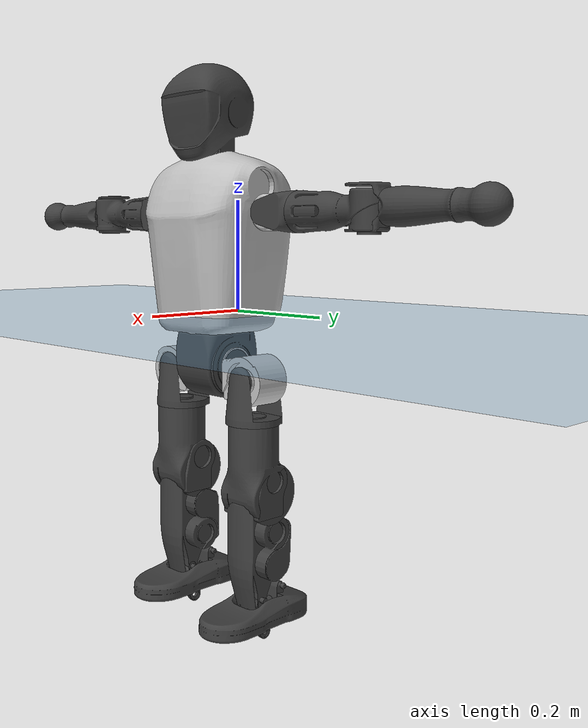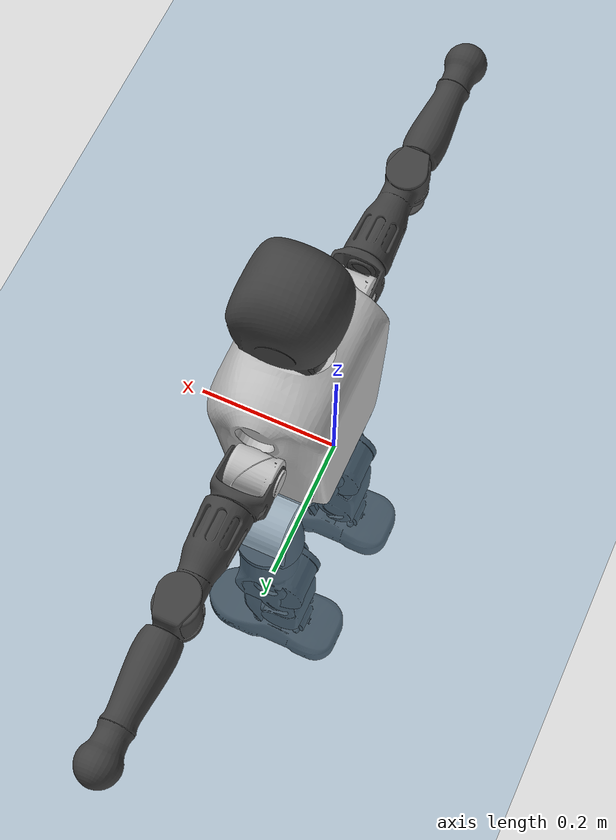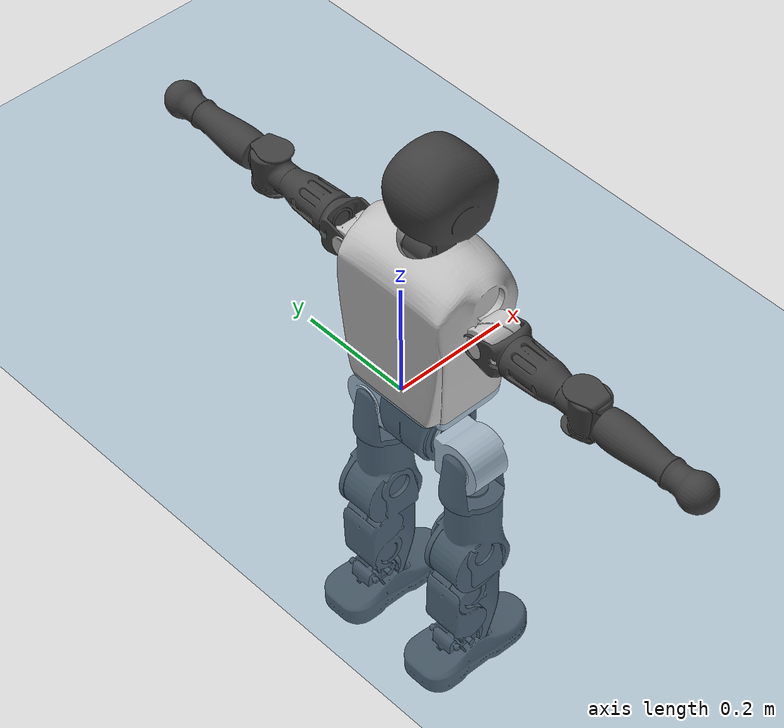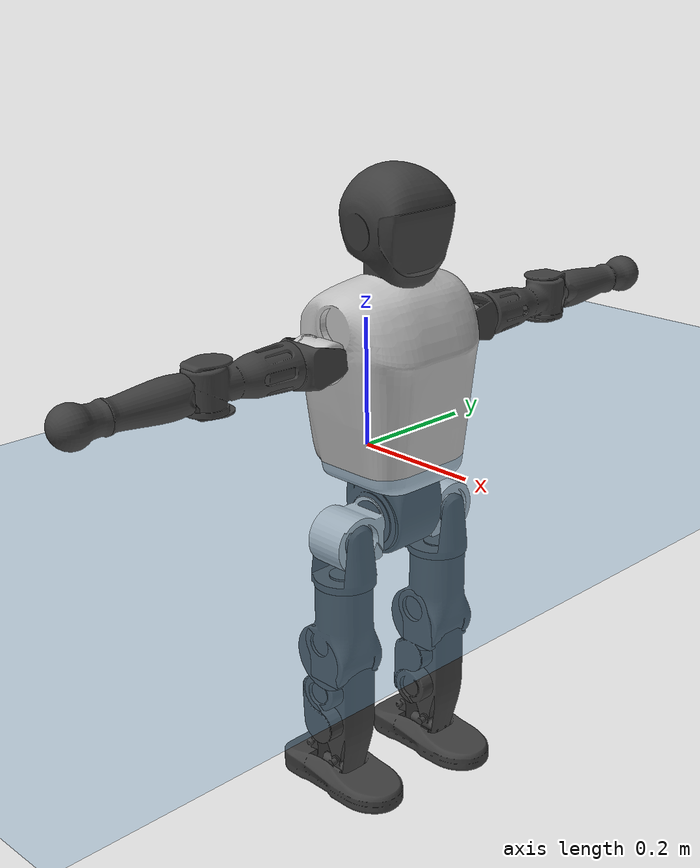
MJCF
<mujoco model="T1">
  <compiler angle="radian" assetdir="assets" balanceinertia="true" inertiafromgeom="false"/>

  <option timestep="0.005" density="1.2" viscosity="2e-05"/>

  <size nkey="1"/>

  <visual>
    <quality shadowsize="8192"/>
    <map shadowclip="0.5"/>
  </visual>

  <default>
    <default class="/">
      <joint armature="0.01" damping="0.01" frictionloss="0.1"/>
      <geom contype="0" conaffinity="0" group="1" solref="-1000 -80"/>
      <site size="0.01 0.005 0.005" group="5"/>
      <general forcelimited="true" biastype="affine" gainprm="25" biasprm="0 -25 -0.6"/>
      <default class="t1">
        <geom rgba="0.25 0.25 0.25 1"/>
        <default class="visual">
          <geom type="mesh" group="2"/>
        </default>
        <default class="collision">
          <geom group="3"/>
        </default>
        <default class="foot">
          <geom size="0.1115 0.05 0.015" type="box" condim="6" group="4" priority="1" solimp="0.015 1 0.015"/>
        </default>
        <default class="reward_collision_sphere">
          <geom group="5" rgba="1 0 0 1"/>
        </default>
      </default>
    </default>
  </default>

  <asset>
    <texture type="skybox" colorspace="auto" name="//unnamed_texture_0" builtin="gradient" rgb1="0.95 0.95 0.95" rgb2="0.95 0.95 0.95" width="100" height="600"/>
    <texture type="2d" colorspace="auto" name="texplane" builtin="checker" rgb1="0.345 0.575 0.748" rgb2="0.345 0.575 0.748" markrgb="1 1 1" width="512" height="512"/>
    <material name="MatPlane" class="/" texture="texplane" texuniform="true" texrepeat="2 2" specular="0.9"/>
    <mesh name="Trunk" class="/" file="Trunk.stl"/>
    <mesh name="H1" class="/" file="H1.stl"/>
    <mesh name="H2" class="/" file="H2.stl"/>
    <mesh name="AL1" class="/" file="AL1.stl"/>
    <mesh name="AL2" class="/" file="AL2.stl"/>
    <mesh name="AL3" class="/" file="AL3.stl"/>
    <mesh name="left_hand_link" class="/" file="left_hand_link.stl"/>
    <mesh name="AR1" class="/" file="AR1.stl"/>
    <mesh name="AR2" class="/" file="AR2.stl"/>
    <mesh name="AR3" class="/" file="AR3.stl"/>
    <mesh name="right_hand_link" class="/" file="right_hand_link.stl"/>
    <mesh name="Waist" class="/" file="Waist.stl"/>
    <mesh name="Hip_Pitch_Left" class="/" file="Hip_Pitch_Left.stl"/>
    <mesh name="Hip_Roll_Left" class="/" file="Hip_Roll_Left.stl"/>
    <mesh name="Hip_Yaw_Left" class="/" file="Hip_Yaw_Left.stl"/>
    <mesh name="Shank_Left" class="/" file="Shank_Left.stl"/>
    <mesh name="Ankle_Cross_Left" class="/" file="Ankle_Cross_Left.stl"/>
    <mesh name="left_foot_link" class="/" file="left_foot_link.stl"/>
    <mesh name="Hip_Pitch_Right" class="/" file="Hip_Pitch_Right.stl"/>
    <mesh name="Hip_Roll_Right" class="/" file="Hip_Roll_Right.stl"/>
    <mesh name="Hip_Yaw_Right" class="/" file="Hip_Yaw_Right.stl"/>
    <mesh name="Shank_Right" class="/" file="Shank_Right.stl"/>
    <mesh name="Ankle_Cross_Right" class="/" file="Ankle_Cross_Right.stl"/>
    <mesh name="right_foot_link" class="/" file="right_foot_link.stl"/>
  </asset>

  <worldbody>
    <geom name="floor" class="/" size="100 100 0.125" type="plane" group="0" material="MatPlane"/>
    <light name="toplight_shadow" class="/" pos="0 0 5" dir="0.0990148 0.0990148 -0.990148" type="directional" ambient="0.04 0.04 0.04" diffuse="0.55 0.55 0.55" specular="0.12 0.12 0.12"/>
    <light name="toplight_fill" class="/" pos="0 0 5" dir="0.0990148 0.0990148 -0.990148" type="directional" castshadow="false" ambient="0.04 0.04 0.04" diffuse="0.3 0.3 0.3" specular="0.08 0.08 0.08"/>
    <body name="trunk" childclass="t1" pos="0.000919392 -3.55199e-05 0.00263453" quat="1 5.61616e-05 0.000470781 -5.21089e-05">
      <inertial pos="0.0459303 0.00084428 0.0832676" quat="0.999772 -0.000934103 -0.021286 0.00162414" mass="7.19379" diaginertia="0.0405724 0.049307 0.017788"/>
      <joint name="//unnamed_joint_0" type="free" armature="0" damping="0" frictionloss="0"/>
      <geom name="//unnamed_geom_1" class="visual" rgba="0.76 0.76 0.76 1" mesh="Trunk"/>
      <geom name="//unnamed_geom_2" class="collision" size="0.0641919 0.0855892 0.128384" pos="0.0512382 0 0.095778" type="box"/>
      <geom name="//unnamed_geom_3" class="reward_collision_sphere" size="0.0984276" pos="0.0512382 0 0.079815"/>
      <geom name="//unnamed_geom_4" class="reward_collision_sphere" size="0.0128384" pos="0.0512382 0.0778223 0"/>
      <geom name="//unnamed_geom_5" class="reward_collision_sphere" size="0.0128384" pos="0.0512382 -0.0778223 0"/>
      <geom name="//unnamed_geom_6" class="reward_collision_sphere" size="0.0128384" pos="0.0512382 0.0979645 0.143667"/>
      <geom name="//unnamed_geom_7" class="reward_collision_sphere" size="0.0128384" pos="0.0512382 -0.0979645 0.143667"/>
      <site name="imu" pos="0.00611049 -0.0109924 0.0103096" size="0.00855892"/>
      <camera name="track" pos="0 -1.83111 0" quat="0.707107 0.707107 0 0" mode="trackcom"/>
      <camera name="ego_camera" pos="0.104184 0 0.335223" quat="-0.5 -0.5 0.5 0.5"/>
      <body name="H1" pos="0.0501397 -0.00313255 0.193411" quat="0.999999 0.00119981 0.000389621 -0.000292427">
        <inertial pos="-0.00264892 -0.00144434 0.0458839" quat="0.760642 -0.0148423 0.00231938 0.648997" mass="0.275206" diaginertia="0.000112133 0.00014341 4.96936e-05"/>
        <joint name="AAHead_yaw" pos="0 0 0" axis="0.000352387 -0.000100817 1" stiffness="0.00771534" range="-1.53277 1.62299" armature="0.00879833" damping="0.0121353" frictionloss="0.0820819"/>
        <geom name="//unnamed_geom_8" class="visual" mesh="H1"/>
        <body name="H2" pos="-0.000866703 -0.00198665 0.0497637" quat="1 -0.000137337 -6.71865e-05 4.10024e-05">
          <inertial pos="0.00737983 0.00274054 0.0813923" quat="0.988305 0.101817 -0.0803274 -0.0802171" mass="0.398291" diaginertia="0.000936188 0.00120693 0.000557591"/>
          <joint name="Head_pitch" pos="0 0 0" axis="0.0016251 -0.999994 0.00296365" stiffness="0.00663908" range="-1.22593 0.404137" armature="0.00754856" damping="0" frictionloss="0.0841789"/>
          <geom name="//unnamed_geom_9" class="visual" mesh="H2"/>
          <geom name="//unnamed_geom_10" class="collision" size="0.0684714" pos="0.0085397 0 0.0877965"/>
          <geom name="//unnamed_geom_11" class="reward_collision_sphere" size="0.0770303" pos="0.0170794 0 0.079815"/>
        </body>
      </body>
      <body name="AL1" pos="0.048456 0.0975083 0.173033" quat="1 -0.000185002 0.000373564 -0.000822094">
        <inertial pos="0.00161327 0.0434617 0.00180305" quat="0.496457 0.501134 -0.511452 0.490726" mass="0.331609" diaginertia="0.000624776 0.000831594 9.75108e-05"/>
        <joint name="Left_Shoulder_Pitch" pos="0 0 0" axis="-0.00313931 0.999993 0.00204771" range="-3.35077 1.1616" armature="0.008553" damping="0.00147561" frictionloss="0.084603"/>
        <geom name="//unnamed_geom_12" class="visual" rgba="0.76 0.76 0.76 1" mesh="AL1"/>
        <body name="AL2" pos="0.00250087 0.0457178 0.00054706" quat="1 -0.000224829 0.000591485 -0.000237133">
          <inertial pos="0.0058903 0.0350158 -0.00280918" quat="0.490314 0.510451 -0.486736 0.511977" mass="0.103747" diaginertia="0.000188711 0.000234774 5.86203e-05"/>
          <joint name="Left_Shoulder_Roll" pos="0 0 0" axis="-0.999976 -0.00303492 -0.00622998" range="-1.63068 1.73796" armature="0.00963598" damping="0.00110486" frictionloss="0.0784007"/>
          <geom name="//unnamed_geom_13" class="visual" mesh="AL2"/>
          <body name="AL3" pos="0.00452616 0.0579375 -0.000317004" quat="1 4.34741e-05 -0.000345169 -0.000112671">
            <inertial pos="-0.00146561 0.0769837 -0.000202113" quat="0.699793 0.714295 0.00846902 0.000859231" mass="0.655785" diaginertia="0.00605859 0.00833347 0.000199444"/>
            <joint name="Left_Elbow_Pitch" pos="0 0 0" axis="0.00160077 -0.999998 -0.00133168" stiffness="0.00953524" range="-2.32028 2.26682" armature="0.00828676" damping="0.00861133" frictionloss="0.0852936"/>
            <geom name="//unnamed_geom_14" class="visual" mesh="AL3"/>
            <geom name="//unnamed_geom_15" class="collision" size="0.0256768 0.0641919" pos="0 0.0457778 0" quat="0.707105 0.707108 0 0" type="cylinder"/>
            <geom name="//unnamed_geom_16" class="reward_collision_sphere" size="0.0308121"/>
            <body name="left_hand_link" pos="0.00105559 0.136259 0.00384951" quat="1 -0.000404382 0.000397959 -0.000735532">
              <inertial pos="0.00047495 0.0982994 -0.00150959" quat="0.703068 0.711076 0.0044661 0.006763" mass="0.203895" diaginertia="0.00378194 0.00513927 6.67181e-05"/>
              <joint name="Left_Elbow_Yaw" pos="0 0 0" axis="0.0112726 -0.00777069 0.999906" range="-2.44988 0.0479929" armature="0.0086525" damping="0" frictionloss="0.0908287"/>
              <geom name="//unnamed_geom_17" class="visual" mesh="left_hand_link"/>
              <geom name="//unnamed_geom_18" class="collision" size="0.0256768 0.0748905" pos="0 0.119022 0" quat="0.707105 0.707108 0 0" type="cylinder"/>
              <geom name="//unnamed_geom_19" class="reward_collision_sphere" size="0.0427946"/>
              <geom name="//unnamed_geom_20" class="reward_collision_sphere" size="0.0299562" pos="0 0.100711 0"/>
              <geom name="//unnamed_geom_21" class="reward_collision_sphere" size="0.0299562" pos="0 0.196845 0"/>
            </body>
          </body>
        </body>
      </body>
      <body name="AR1" pos="0.0467227 -0.0937825 0.17423" quat="1 5.54657e-05 0.000400467 3.60151e-05">
        <inertial pos="-0.00202413 -0.041663 -0.000891183" quat="0.502574 0.496378 -0.508097 0.492814" mass="0.346823" diaginertia="0.000622448 0.000837493 9.67271e-05"/>
        <joint name="Right_Shoulder_Pitch" pos="0 0 0" axis="0.0010308 -0.999907 -0.0135769" stiffness="0.00891916" range="-1.19316 3.32077" armature="0.00884255" damping="0.0191938" frictionloss="0.0839667"/>
        <geom name="//unnamed_geom_22" class="visual" rgba="0.76 0.76 0.76 1" mesh="AR1"/>
        <body name="AR2" pos="-0.00187951 -0.0398504 -0.000280809" quat="0.999999 0.000217166 7.35975e-05 -0.00135454">
          <inertial pos="0.000278882 -0.0326921 -0.0026377" quat="0.509604 0.499668 -0.508102 0.48215" mass="0.101904" diaginertia="0.000181652 0.000224426 5.79856e-05"/>
          <joint name="Right_Shoulder_Roll" pos="0 0 0" axis="-0.99996 -0.00795037 -0.00421369" stiffness="0.0109857" range="-1.68868 1.53497" armature="0.00843301" damping="0.0119716" frictionloss="0.0770232"/>
          <geom name="//unnamed_geom_23" class="visual" mesh="AR2"/>
          <body name="AR3" pos="-0.00265118 -0.0541847 0.00209395" quat="1 0.000436644 -0.000236693 -2.33522e-05">
            <inertial pos="-0.000455467 -0.0788781 0.00120941" quat="0.709248 0.704949 0.000531862 -0.00381367" mass="0.622524" diaginertia="0.00568724 0.00857489 0.000201138"/>
            <joint name="Right_Elbow_Pitch" pos="0 0 0" axis="0.00319567 0.999993 0.00180366" stiffness="0.00563345" range="-2.27437 2.26361" armature="0.00873257" damping="0.0192561" frictionloss="0.0927455"/>
            <geom name="//unnamed_geom_24" class="visual" mesh="AR3"/>
            <geom name="//unnamed_geom_25" class="collision" size="0.0256768 0.0641919" pos="0 -0.0457778 0" quat="0.707105 0.707108 0 0" type="cylinder"/>
            <geom name="//unnamed_geom_26" class="reward_collision_sphere" size="0.0308121"/>
            <body name="right_hand_link" pos="-0.00224628 -0.133337 0.000757325" quat="0.999999 0.000252691 -0.00116553 0.000809052">
              <inertial pos="-2.77864e-06 -0.10008 0.00247612" quat="0.707978 0.706162 0.00403319 -0.00930275" mass="0.200478" diaginertia="0.00350991 0.00512906 6.83945e-05"/>
              <joint name="Right_Elbow_Yaw" pos="0 0 0" axis="-0.00161299 -0.00108371 0.999998" stiffness="0.000826986" range="-0.0523359 2.44058" armature="0.00918949" damping="0.00842258" frictionloss="0.0845719"/>
              <geom name="//unnamed_geom_27" class="visual" mesh="right_hand_link"/>
              <geom name="//unnamed_geom_28" class="collision" size="0.0256768 0.0748905" pos="0 -0.119022 0" quat="0.707105 0.707108 0 0" type="cylinder"/>
              <geom name="//unnamed_geom_29" class="reward_collision_sphere" size="0.0427946"/>
              <geom name="//unnamed_geom_30" class="reward_collision_sphere" size="0.0299562" pos="0 -0.100711 0"/>
              <geom name="//unnamed_geom_31" class="reward_collision_sphere" size="0.0299562" pos="0 -0.196845 0"/>
            </body>
          </body>
        </body>
      </body>
      <body name="Waist" pos="0.0542339 0.00137317 -0.0946591" quat="1 2.39734e-05 -0.000263729 -1.81461e-05">
        <inertial pos="0.00323511 4.76022e-05 0.00680813" quat="0.984652 0.00525909 -0.174102 0.0110362" mass="1.62073" diaginertia="0.00235631 0.00322544 0.00147803"/>
        <joint name="Waist" pos="0 0 0" axis="-0.00329801 -0.0022114 0.999992" stiffness="0.00324329" range="-1.547 1.61127" armature="0.00764553" damping="0.0172307" frictionloss="0.0898267"/>
        <geom name="//unnamed_geom_32" class="visual" mesh="Waist"/>
        <body name="Hip_Pitch_Left" pos="-0.000888736 0.098836 -0.000651561" quat="1 -4.30775e-05 -0.000159512 -0.000695724">
          <inertial pos="-0.00135904 -0.00544876 -0.0150202" quat="0.975373 0.219971 0.0161379 0.000917671" mass="0.61734" diaginertia="0.00079004 0.000915669 0.000393895"/>
          <joint name="Left_Hip_Pitch" pos="0 0 0" axis="-0.00372225 0.999972 0.00644031" stiffness="0.0111357" range="-1.81291 1.62963" armature="0.00845241" damping="0.0237566" frictionloss="0.086001"/>
          <geom name="//unnamed_geom_33" class="visual" rgba="0.76 0.76 0.76 1" mesh="Hip_Pitch_Left"/>
          <body name="Hip_Roll_Left" pos="0.00264347 -0.00143022 -0.0191662" quat="1 -0.000886389 0.0001236 0.000173404">
            <inertial pos="-0.000358486 -0.000162986 -0.0441876" quat="0.706895 -0.00493996 -0.00628135 0.707274" mass="0.239754" diaginertia="0.000797137 0.000944719 0.000161017"/>
            <joint name="Left_Hip_Roll" pos="0 0 0" axis="-0.999986 -0.00153198 0.00499557" range="-1.55025 0.18135" armature="0.00857249" damping="0.0149891" frictionloss="0.0968421"/>
            <geom name="//unnamed_geom_34" class="visual" mesh="Hip_Roll_Left"/>
            <geom name="//unnamed_geom_35" class="reward_collision_sphere" size="0.0470741"/>
            <body name="Hip_Yaw_Left" pos="-0.00057551 0.00107757 -0.0667672" quat="0.999999 0.000981427 0.000796749 0.000436927">
              <inertial pos="-0.0070701 1.74364e-05 -0.070172" quat="0.695719 -0.0401825 -0.0327302 0.716442" mass="1.31585" diaginertia="0.0115868 0.0160466 0.000867205"/>
              <joint name="Left_Hip_Yaw" pos="0 0 0" axis="-0.00718194 0.00653212 -0.999953" stiffness="0.000449368" range="-1.01114 0.991933" armature="0.00851862" damping="0.000955731" frictionloss="0.0857229"/>
              <geom name="//unnamed_geom_36" class="visual" mesh="Hip_Yaw_Left"/>
              <geom name="//unnamed_geom_37" class="collision" size="0.0427946 0.0684714" type="cylinder"/>
              <body name="Shank_Left" pos="-0.0122307 -0.00148664 -0.109633" quat="0.999999 0.000457645 -0.00105284 -0.000427737">
                <inertial pos="-0.00452081 0.00193047 -0.100374" quat="0.998218 -0.00654201 -0.0229574 0.0546976" mass="1.11818" diaginertia="0.0153289 0.023171 0.000606508"/>
                <joint name="Left_Knee_Pitch" pos="0 0 0" axis="-0.00250355 0.999989 -0.00405183" stiffness="0.00360584" range="0.0340174 2.34417" armature="0.0090595" damping="0.0154349" frictionloss="0.0957601"/>
                <geom name="//unnamed_geom_38" class="visual" mesh="Shank_Left"/>
                <geom name="//unnamed_geom_39" class="collision" size="0.0427946 0.0641919" pos="0 0 -0.095778" type="cylinder"/>
                <geom name="//unnamed_geom_40" class="reward_collision_sphere" size="0.055633"/>
                <body name="Ankle_Cross_Left" pos="-0.00195448 -0.00166786 -0.22408" quat="0.999999 -0.000600106 0.000980609 0.000711901">
                  <inertial pos="-0.00233922 0.00250623 -0.00753584" quat="0.44771 0.553461 0.550312 0.436342" mass="0.0466738" diaginertia="1.38969e-05 1.6336e-05 3.63837e-06"/>
                  <joint name="Left_Ankle_Pitch" pos="0 0 0" axis="-0.0107331 0.999898 0.00947136" range="-0.88732 0.404968" armature="0.00736516" damping="0.0212138" frictionloss="0.0951539"/>
                  <geom name="//unnamed_geom_41" class="visual" mesh="Ankle_Cross_Left"/>
                  <body name="left_foot_link" pos="0.00206772 -0.00108506 -0.0118911" quat="1 0.000404148 0.000578766 -0.000434969">
                    <inertial pos="-0.00157777 -0.00184307 -0.00698911" quat="0.00220655 0.622156 -0.000150879 0.78289" mass="0.415707" diaginertia="0.0012675 0.00152886 0.000719389"/>
                    <joint name="Left_Ankle_Roll" pos="0 0 0" axis="-0.999944 -0.00565601 -0.00891281" range="-0.4958 0.400608" armature="0.00851833" damping="0.00102806" frictionloss="0.08177"/>
                    <geom name="//unnamed_geom_42" class="visual" mesh="left_foot_link"/>
                    <geom name="left_foot" class="foot" size="0.098268 0.0387737 0.0143836" pos="0.0085397 0 -0.0119722"/>
                    <geom name="//unnamed_geom_44" class="reward_collision_sphere" size="0.0445064" pos="0.0085397 0 -0.0119722"/>
                    <geom name="//unnamed_geom_45" class="reward_collision_sphere" size="0.0256768" pos="0.0811271 -0.0210578 -0.0119722"/>
                    <geom name="//unnamed_geom_46" class="reward_collision_sphere" size="0.0256768" pos="-0.0597779 -0.0210578 -0.0119722"/>
                    <site name="left_foot" class="foot" pos="0.0085397 0 -0.0119722" size="0.00855892"/>
                  </body>
                </body>
              </body>
            </body>
          </body>
        </body>
        <body name="Hip_Pitch_Right" pos="-0.0033267 -0.0985381 0.000735776" quat="0.999999 -0.000837432 0.00102797 -0.000754425">
          <inertial pos="9.74766e-05 0.00833323 -0.012511" quat="0.972956 -0.230424 0.0144309 0.00732336" mass="0.647303" diaginertia="0.000830366 0.000952518 0.000422919"/>
          <joint name="Right_Hip_Pitch" pos="0 0 0" axis="0.0124504 -0.999914 0.00402603" range="-1.57461 1.79147" armature="0.00951569" damping="0.00551467" frictionloss="0.0972771"/>
          <geom name="//unnamed_geom_47" class="visual" rgba="0.76 0.76 0.76 1" mesh="Hip_Pitch_Right"/>
          <body name="Hip_Roll_Right" pos="-9.07842e-05 -0.00222822 -0.0130348" quat="1 0.000261764 -0.000376367 -0.000209585">
            <inertial pos="0.00251009 0.000950796 -0.0455481" quat="0.707786 0.00413982 -0.0141348 0.706274" mass="0.233096" diaginertia="0.000737403 0.000950942 0.000160898"/>
            <joint name="Right_Hip_Roll" pos="0 0 0" axis="-1 -0.000106097 -0.000157274" stiffness="0.00502414" range="-0.197339 1.62587" armature="0.00802378" damping="0.00991386" frictionloss="0.0859093"/>
            <geom name="//unnamed_geom_48" class="visual" mesh="Hip_Roll_Right"/>
            <geom name="//unnamed_geom_49" class="reward_collision_sphere" size="0.0470741"/>
            <body name="Hip_Yaw_Right" pos="-0.00033336 -0.00249655 -0.0656083" quat="0.999999 -0.000668305 -0.000736674 -0.000458334">
              <inertial pos="-0.00269627 -0.000250487 -0.070099" quat="0.706238 -0.0351255 -0.0266132 0.706601" mass="1.42956" diaginertia="0.0123166 0.0169276 0.000890279"/>
              <joint name="Right_Hip_Yaw" pos="0 0 0" axis="-0.0125445 -0.00763915 -0.999892" stiffness="0.00322608" range="-1.00119 0.984929" armature="0.00853832" damping="0.00287484" frictionloss="0.0770796"/>
              <geom name="//unnamed_geom_50" class="visual" mesh="Hip_Yaw_Right"/>
              <geom name="//unnamed_geom_51" class="collision" size="0.0427946 0.0684714" type="cylinder"/>
              <body name="Shank_Right" pos="-0.0139365 0.00258698 -0.108832" quat="1 -0.000268741 0.000486063 0.000796935">
                <inertial pos="-0.00278014 0.00232951 -0.0977237" quat="0.999218 -0.00192693 -0.0241577 -0.0312285" mass="1.14648" diaginertia="0.0158877 0.0219951 0.000619316"/>
                <joint name="Right_Knee_Pitch" pos="0 0 0" axis="-0.00560529 -0.999972 0.00491177" stiffness="0.00999867" range="-2.36005 -0.0214144" armature="0.00806204" damping="0.02228" frictionloss="0.0953533"/>
                <geom name="//unnamed_geom_52" class="visual" mesh="Shank_Right"/>
                <geom name="//unnamed_geom_53" class="collision" size="0.0427946 0.0641919" pos="0 0 -0.095778" type="cylinder"/>
                <geom name="//unnamed_geom_54" class="reward_collision_sphere" size="0.055633"/>
                <body name="Ankle_Cross_Right" pos="-0.00262985 -0.00121551 -0.225832" quat="0.999999 0.00108817 -0.000365753 8.32485e-05">
                  <inertial pos="-0.00345278 0.000936895 -0.00722969" quat="0.439396 0.558534 0.552172 0.435978" mass="0.0429673" diaginertia="1.2694e-05 1.58689e-05 3.57988e-06"/>
                  <joint name="Right_Ankle_Pitch" pos="0 0 0" axis="0.00108682 -0.999986 0.00514989" stiffness="0.00484622" range="-0.359785 0.814226" armature="0.00967954" damping="0" frictionloss="0.0807754"/>
                  <geom name="//unnamed_geom_55" class="visual" mesh="Ankle_Cross_Right"/>
                  <body name="right_foot_link" pos="0.00208735 0.00032478 -0.0067062" quat="0.999999 -4.67124e-05 0.00126298 0.000493643">
                    <inertial pos="0.000708268 0.00126312 -0.00957838" quat="-0.000142869 0.620397 0.00275067 0.784283" mass="0.453886" diaginertia="0.00121213 0.00155646 0.000704644"/>
                    <joint name="Right_Ankle_Roll" pos="0 0 0" axis="-0.99991 -0.00751632 0.0111536" range="-0.417553 0.489727" armature="0.00726848" damping="0.00480856" frictionloss="0.0812046"/>
                    <geom name="//unnamed_geom_56" class="visual" mesh="right_foot_link"/>
                    <geom name="right_foot" class="foot" size="0.0996603 0.0433299 0.0131716" pos="0.0085397 0 -0.0119722"/>
                    <geom name="//unnamed_geom_58" class="reward_collision_sphere" size="0.0342357"/>
                    <geom name="//unnamed_geom_59" class="reward_collision_sphere" size="0.0256768" pos="0.0085397 0 -0.0119722"/>
                    <geom name="//unnamed_geom_60" class="reward_collision_sphere" size="0.0256768" pos="0.0811271 0.0210578 -0.0119722"/>
                    <geom name="//unnamed_geom_61" class="reward_collision_sphere" size="0.0256768" pos="-0.0597779 0.0210578 -0.0119722"/>
                    <site name="right_foot" class="foot" pos="0.0085397 0 -0.0119722" size="0.00855892"/>
                  </body>
                </body>
              </body>
            </body>
          </body>
        </body>
      </body>
    </body>
  </worldbody>

  <contact>
    <pair class="/" geom1="floor" geom2="left_foot" name="//unnamed_contact_0"/>
    <pair class="/" geom1="floor" geom2="right_foot" name="//unnamed_contact_1"/>
  </contact>

  <actuator>
    <general name="AAHead_yaw" class="/" joint="AAHead_yaw" forcerange="-5.43787 5.43787" gainprm="23.2138" biasprm="0 -23.2138 -0.538812"/>
    <general name="Head_pitch" class="/" joint="Head_pitch" forcerange="-5.81303 5.81303" gainprm="23.2138" biasprm="0 -23.2138 -0.538812"/>
    <general name="Left_Shoulder_Pitch" class="/" joint="Left_Shoulder_Pitch" forcerange="-15.4095 15.4095" gainprm="23.2138" biasprm="0 -23.2138 -0.538812"/>
    <general name="Left_Shoulder_Roll" class="/" joint="Left_Shoulder_Roll" forcerange="-15.1923 15.1923" gainprm="23.2138" biasprm="0 -23.2138 -0.538812"/>
    <general name="Left_Elbow_Pitch" class="/" joint="Left_Elbow_Pitch" forcerange="-16.8843 16.8843" gainprm="23.2138" biasprm="0 -23.2138 -0.538812"/>
    <general name="Left_Elbow_Yaw" class="/" joint="Left_Elbow_Yaw" forcerange="-15.6701 15.6701" gainprm="23.2138" biasprm="0 -23.2138 -0.538812"/>
    <general name="Right_Shoulder_Pitch" class="/" joint="Right_Shoulder_Pitch" forcerange="-15.4286 15.4286" gainprm="23.2138" biasprm="0 -23.2138 -0.538812"/>
    <general name="Right_Shoulder_Roll" class="/" joint="Right_Shoulder_Roll" forcerange="-15.4846 15.4846" gainprm="23.2138" biasprm="0 -23.2138 -0.538812"/>
    <general name="Right_Elbow_Pitch" class="/" joint="Right_Elbow_Pitch" forcerange="-14.8482 14.8482" gainprm="23.2138" biasprm="0 -23.2138 -0.538812"/>
    <general name="Right_Elbow_Yaw" class="/" joint="Right_Elbow_Yaw" forcerange="-16.7061 16.7061" gainprm="23.2138" biasprm="0 -23.2138 -0.538812"/>
    <general name="Waist" class="/" joint="Waist" forcerange="-28.1341 28.1341" gainprm="23.2138" biasprm="0 -23.2138 -0.538812"/>
    <general name="Left_Hip_Pitch" class="/" joint="Left_Hip_Pitch" forcerange="-36.8545 36.8545" gainprm="23.2138" biasprm="0 -23.2138 -0.538812"/>
    <general name="Left_Hip_Roll" class="/" joint="Left_Hip_Roll" forcerange="-25.8085 25.8085" gainprm="23.2138" biasprm="0 -23.2138 -0.538812"/>
    <general name="Left_Hip_Yaw" class="/" joint="Left_Hip_Yaw" forcerange="-27.142 27.142" gainprm="23.2138" biasprm="0 -23.2138 -0.538812"/>
    <general name="Left_Knee_Pitch" class="/" joint="Left_Knee_Pitch" forcerange="-55.387 55.387" gainprm="23.2138" biasprm="0 -23.2138 -0.538812"/>
    <general name="Left_Ankle_Pitch" class="/" joint="Left_Ankle_Pitch" forcerange="-16.9117 16.9117" gainprm="23.2138" biasprm="0 -23.2138 -0.538812"/>
    <general name="Left_Ankle_Roll" class="/" joint="Left_Ankle_Roll" forcerange="-12.5961 12.5961" gainprm="23.2138" biasprm="0 -23.2138 -0.538812"/>
    <general name="Right_Hip_Pitch" class="/" joint="Right_Hip_Pitch" forcerange="-41.0045 41.0045" gainprm="23.2138" biasprm="0 -23.2138 -0.538812"/>
    <general name="Right_Hip_Roll" class="/" joint="Right_Hip_Roll" forcerange="-25.9851 25.9851" gainprm="23.2138" biasprm="0 -23.2138 -0.538812"/>
    <general name="Right_Hip_Yaw" class="/" joint="Right_Hip_Yaw" forcerange="-27.0722 27.0722" gainprm="23.2138" biasprm="0 -23.2138 -0.538812"/>
    <general name="Right_Knee_Pitch" class="/" joint="Right_Knee_Pitch" forcerange="-57.0029 57.0029" gainprm="23.2138" biasprm="0 -23.2138 -0.538812"/>
    <general name="Right_Ankle_Pitch" class="/" joint="Right_Ankle_Pitch" forcerange="-15.6577 15.6577" gainprm="23.2138" biasprm="0 -23.2138 -0.538812"/>
    <general name="Right_Ankle_Roll" class="/" joint="Right_Ankle_Roll" forcerange="-12.0465 12.0465" gainprm="23.2138" biasprm="0 -23.2138 -0.538812"/>
  </actuator>

  <sensor>
    <gyro site="imu" name="imu_angular_velocity"/>
    <velocimeter site="imu" name="imu_linear_velocity"/>
    <framelinvel objtype="site" objname="left_foot" name="left_foot_global_linear_velocity"/>
    <framelinvel objtype="site" objname="right_foot" name="right_foot_global_linear_velocity"/>
  </sensor>

  <keyframe>
    <key name="home" qpos="0 0 0.6385 1 0 0 0 0 0 0 1.4 0 -0.4 0 -1.4 0 0.4 0 -0.4 0 0 0.8 -0.4 0 0.4 0 0 -0.8 0.4 0"/>
  </keyframe>
</mujoco>
